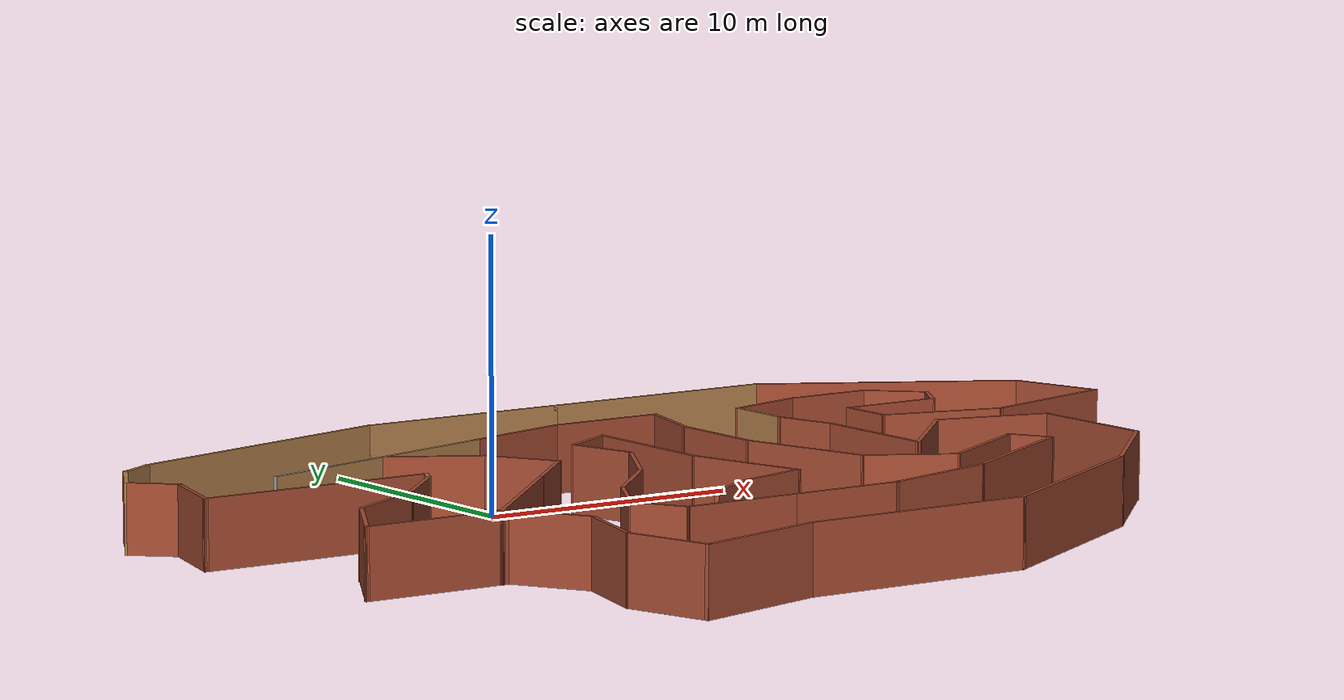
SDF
<?xml version='1.0'?>
<sdf version='1.6'>
  <model name='buildingwoodandbrick'>
    <pose frame=''>5.71008 -6.80437 0 0 -0 0</pose>
    <link name='Wall_0'>
      <collision name='Wall_0_Collision'>
        <geometry>
          <box>
            <size>9 0.15 2.5</size>
          </box>
        </geometry>
        <pose frame=''>0 0 1.25 0 -0 0</pose>
      </collision>
      <visual name='Wall_0_Visual'>
        <pose frame=''>0 0 1.25 0 -0 0</pose>
        <geometry>
          <box>
            <size>9 0.15 2.5</size>
          </box>
        </geometry>
        <material>
          <script>
            <uri>file://media/materials/scripts/gazebo.material</uri>
            <name>Gazebo/Bricks</name>
          </script>
          <ambient>1 1 1 1</ambient>
        </material>
        <meta>
          <layer>0</layer>
        </meta>
      </visual>
      <pose frame=''>-15.1551 3.41437 0 0 -0 3.14159</pose>
    </link>
    <link name='Wall_1'>
      <collision name='Wall_1_Collision'>
        <geometry>
          <box>
            <size>3.25 0.15 2.5</size>
          </box>
        </geometry>
        <pose frame=''>0 0 1.25 0 -0 0</pose>
      </collision>
      <visual name='Wall_1_Visual'>
        <pose frame=''>0 0 1.25 0 -0 0</pose>
        <geometry>
          <box>
            <size>3.25 0.15 2.5</size>
          </box>
        </geometry>
        <material>
          <script>
            <uri>file://media/materials/scripts/gazebo.material</uri>
            <name>Gazebo/Bricks</name>
          </script>
          <ambient>1 1 1 1</ambient>
        </material>
        <meta>
          <layer>0</layer>
        </meta>
      </visual>
      <pose frame=''>-19.1789 4.91155 0 0 -0 1.309</pose>
    </link>
    <link name='Wall_10'>
      <collision name='Wall_10_Collision'>
        <geometry>
          <box>
            <size>6 0.15 2.5</size>
          </box>
        </geometry>
        <pose frame=''>0 0 1.25 0 -0 0</pose>
      </collision>
      <visual name='Wall_10_Visual'>
        <pose frame=''>0 0 1.25 0 -0 0</pose>
        <geometry>
          <box>
            <size>6 0.15 2.5</size>
          </box>
        </geometry>
        <material>
          <script>
            <uri>file://media/materials/scripts/gazebo.material</uri>
            <name>Gazebo/Bricks</name>
          </script>
          <ambient>1 1 1 1</ambient>
        </material>
        <meta>
          <layer>0</layer>
        </meta>
      </visual>
      <pose frame=''>17.2748 4.33026 0 0 0 -2.87979</pose>
    </link>
    <link name='Wall_11'>
      <collision name='Wall_11_Collision'>
        <geometry>
          <box>
            <size>4.75 0.15 2.5</size>
          </box>
        </geometry>
        <pose frame=''>0 0 1.25 0 -0 0</pose>
      </collision>
      <visual name='Wall_11_Visual'>
        <pose frame=''>0 0 1.25 0 -0 0</pose>
        <geometry>
          <box>
            <size>4.75 0.15 2.5</size>
          </box>
        </geometry>
        <material>
          <script>
            <uri>file://media/materials/scripts/gazebo.material</uri>
            <name>Gazebo/Bricks</name>
          </script>
          <ambient>1 1 1 1</ambient>
        </material>
        <meta>
          <layer>0</layer>
        </meta>
      </visual>
      <pose frame=''>12.2278 4.1685 0 0 -0 2.87979</pose>
    </link>
    <link name='Wall_12'>
      <collision name='Wall_12_Collision'>
        <geometry>
          <box>
            <size>2.25 0.15 2.5</size>
          </box>
        </geometry>
        <pose frame=''>0 0 1.25 0 -0 0</pose>
      </collision>
      <visual name='Wall_12_Visual'>
        <pose frame=''>0 0 1.25 0 -0 0</pose>
        <geometry>
          <box>
            <size>2.25 0.15 2.5</size>
          </box>
        </geometry>
        <material>
          <script>
            <uri>file://media/materials/scripts/gazebo.material</uri>
            <name>Gazebo/Bricks</name>
          </script>
          <ambient>1 1 1 1</ambient>
        </material>
        <meta>
          <layer>0</layer>
        </meta>
      </visual>
      <pose frame=''>10.0062 5.81378 0 0 -0 1.5708</pose>
    </link>
    <link name='Wall_13'>
      <collision name='Wall_13_Collision'>
        <geometry>
          <box>
            <size>4 0.15 2.5</size>
          </box>
        </geometry>
        <pose frame=''>0 0 1.25 0 -0 0</pose>
      </collision>
      <visual name='Wall_13_Visual'>
        <pose frame=''>0 0 1.25 0 -0 0</pose>
        <geometry>
          <box>
            <size>4 0.15 2.5</size>
          </box>
        </geometry>
        <material>
          <script>
            <uri>file://media/materials/scripts/gazebo.material</uri>
            <name>Gazebo/Bricks</name>
          </script>
          <ambient>1 1 1 1</ambient>
        </material>
        <meta>
          <layer>0</layer>
        </meta>
      </visual>
      <pose frame=''>11.9312 6.86378 0 0 -0 0</pose>
    </link>
    <link name='Wall_14'>
      <collision name='Wall_14_Collision'>
        <geometry>
          <box>
            <size>1.75 0.15 2.5</size>
          </box>
        </geometry>
        <pose frame=''>0 0 1.25 0 -0 0</pose>
      </collision>
      <visual name='Wall_14_Visual'>
        <pose frame=''>0 0 1.25 0 -0 0</pose>
        <geometry>
          <box>
            <size>1.75 0.15 2.5</size>
          </box>
        </geometry>
        <material>
          <script>
            <uri>file://media/materials/scripts/gazebo.material</uri>
            <name>Gazebo/Bricks</name>
          </script>
          <ambient>1 1 1 1</ambient>
        </material>
        <meta>
          <layer>0</layer>
        </meta>
      </visual>
      <pose frame=''>14.2562 7.5566 0 0 -0 1.0472</pose>
    </link>
    <link name='Wall_15'>
      <collision name='Wall_15_Collision'>
        <geometry>
          <box>
            <size>2.5 0.15 2.5</size>
          </box>
        </geometry>
        <pose frame=''>0 0 1.25 0 -0 0</pose>
      </collision>
      <visual name='Wall_15_Visual'>
        <pose frame=''>0 0 1.25 0 -0 0</pose>
        <geometry>
          <box>
            <size>2.5 0.15 2.5</size>
          </box>
        </geometry>
        <material>
          <script>
            <uri>file://media/materials/scripts/gazebo.material</uri>
            <name>Gazebo/Bricks</name>
          </script>
          <ambient>1 1 1 1</ambient>
        </material>
        <meta>
          <layer>0</layer>
        </meta>
      </visual>
      <pose frame=''>13.8253 9.08028 0 0 -0 2.35619</pose>
    </link>
    <link name='Wall_16'>
      <collision name='Wall_16_Collision'>
        <geometry>
          <box>
            <size>3.5 0.15 2.5</size>
          </box>
        </geometry>
        <pose frame=''>0 0 1.25 0 -0 0</pose>
      </collision>
      <visual name='Wall_16_Visual'>
        <pose frame=''>0 0 1.25 0 -0 0</pose>
        <geometry>
          <box>
            <size>3.5 0.15 2.5</size>
          </box>
        </geometry>
        <material>
          <script>
            <uri>file://media/materials/scripts/gazebo.material</uri>
            <name>Gazebo/Bricks</name>
          </script>
          <ambient>1 1 1 1</ambient>
        </material>
        <meta>
          <layer>0</layer>
        </meta>
      </visual>
      <pose frame=''>11.3195 9.91113 0 0 -0 3.14159</pose>
    </link>
    <link name='Wall_17'>
      <collision name='Wall_17_Collision'>
        <geometry>
          <box>
            <size>3.25 0.15 2.5</size>
          </box>
        </geometry>
        <pose frame=''>0 0 1.25 0 -0 0</pose>
      </collision>
      <visual name='Wall_17_Visual'>
        <pose frame=''>0 0 1.25 0 -0 0</pose>
        <geometry>
          <box>
            <size>3.25 0.15 2.5</size>
          </box>
        </geometry>
        <material>
          <script>
            <uri>file://media/materials/scripts/gazebo.material</uri>
            <name>Gazebo/Bricks</name>
          </script>
          <ambient>1 1 1 1</ambient>
        </material>
        <meta>
          <layer>0</layer>
        </meta>
      </visual>
      <pose frame=''>8.14729 9.50996 0 0 0 -2.87979</pose>
    </link>
    <link name='Wall_18'>
      <collision name='Wall_18_Collision'>
        <geometry>
          <box>
            <size>2.75 0.15 2.5</size>
          </box>
        </geometry>
        <pose frame=''>0 0 1.25 0 -0 0</pose>
      </collision>
      <visual name='Wall_18_Visual'>
        <pose frame=''>0 0 1.25 0 -0 0</pose>
        <geometry>
          <box>
            <size>2.75 0.15 2.5</size>
          </box>
        </geometry>
        <material>
          <script>
            <uri>file://media/materials/scripts/gazebo.material</uri>
            <name>Gazebo/Wood</name>
          </script>
          <ambient>1 1 1 1</ambient>
        </material>
        <meta>
          <layer>0</layer>
        </meta>
      </visual>
      <pose frame=''>6.65011 7.80879 0 0 0 -1.5708</pose>
    </link>
    <link name='Wall_19'>
      <collision name='Wall_19_Collision'>
        <geometry>
          <box>
            <size>2.5 0.15 2.5</size>
          </box>
        </geometry>
        <pose frame=''>0 0 1.25 0 -0 0</pose>
      </collision>
      <visual name='Wall_19_Visual'>
        <pose frame=''>0 0 1.25 0 -0 0</pose>
        <geometry>
          <box>
            <size>2.5 0.15 2.5</size>
          </box>
        </geometry>
        <material>
          <script>
            <uri>file://media/materials/scripts/gazebo.material</uri>
            <name>Gazebo/Bricks</name>
          </script>
          <ambient>1 1 1 1</ambient>
        </material>
        <meta>
          <layer>0</layer>
        </meta>
      </visual>
      <pose frame=''>6.95422 5.37382 0 0 0 -1.309</pose>
    </link>
    <link name='Wall_2'>
      <collision name='Wall_2_Collision'>
        <geometry>
          <box>
            <size>2 0.15 2.5</size>
          </box>
        </geometry>
        <pose frame=''>0 0 1.25 0 -0 0</pose>
      </collision>
      <visual name='Wall_2_Visual'>
        <pose frame=''>0 0 1.25 0 -0 0</pose>
        <geometry>
          <box>
            <size>2 0.15 2.5</size>
          </box>
        </geometry>
        <material>
          <script>
            <uri>file://media/materials/scripts/gazebo.material</uri>
            <name>Gazebo/Bricks</name>
          </script>
          <ambient>1 1 1 1</ambient>
        </material>
        <meta>
          <layer>0</layer>
        </meta>
      </visual>
      <pose frame=''>-19.4318 7.06281 0 0 -0 2.35619</pose>
    </link>
    <link name='Wall_20'>
      <collision name='Wall_20_Collision'>
        <geometry>
          <box>
            <size>5.25 0.15 2.5</size>
          </box>
        </geometry>
        <pose frame=''>0 0 1.25 0 -0 0</pose>
      </collision>
      <visual name='Wall_20_Visual'>
        <pose frame=''>0 0 1.25 0 -0 0</pose>
        <geometry>
          <box>
            <size>5.25 0.15 2.5</size>
          </box>
        </geometry>
        <material>
          <script>
            <uri>file://media/materials/scripts/gazebo.material</uri>
            <name>Gazebo/Bricks</name>
          </script>
          <ambient>1 1 1 1</ambient>
        </material>
        <meta>
          <layer>0</layer>
        </meta>
      </visual>
      <pose frame=''>7.25833 1.68886 0 0 0 -1.5708</pose>
    </link>
    <link name='Wall_21'>
      <collision name='Wall_21_Collision'>
        <geometry>
          <box>
            <size>5.25 0.15 2.5</size>
          </box>
        </geometry>
        <pose frame=''>0 0 1.25 0 -0 0</pose>
      </collision>
      <visual name='Wall_21_Visual'>
        <pose frame=''>0 0 1.25 0 -0 0</pose>
        <geometry>
          <box>
            <size>5.25 0.15 2.5</size>
          </box>
        </geometry>
        <material>
          <script>
            <uri>file://media/materials/scripts/gazebo.material</uri>
            <name>Gazebo/Bricks</name>
          </script>
          <ambient>1 1 1 1</ambient>
        </material>
        <meta>
          <layer>0</layer>
        </meta>
      </visual>
      <pose frame=''>9.06146 0.941983 0 0 -0 0.785398</pose>
    </link>
    <link name='Wall_22'>
      <collision name='Wall_22_Collision'>
        <geometry>
          <box>
            <size>4.5 0.15 2.5</size>
          </box>
        </geometry>
        <pose frame=''>0 0 1.25 0 -0 0</pose>
      </collision>
      <visual name='Wall_22_Visual'>
        <pose frame=''>0 0 1.25 0 -0 0</pose>
        <geometry>
          <box>
            <size>4.5 0.15 2.5</size>
          </box>
        </geometry>
        <material>
          <script>
            <uri>file://media/materials/scripts/gazebo.material</uri>
            <name>Gazebo/Bricks</name>
          </script>
          <ambient>1 1 1 1</ambient>
        </material>
        <meta>
          <layer>0</layer>
        </meta>
      </visual>
      <pose frame=''>12.9655 2.18217 0 0 0 -0.261799</pose>
    </link>
    <link name='Wall_23'>
      <collision name='Wall_23_Collision'>
        <geometry>
          <box>
            <size>5.25 0.15 2.5</size>
          </box>
        </geometry>
        <pose frame=''>0 0 1.25 0 -0 0</pose>
      </collision>
      <visual name='Wall_23_Visual'>
        <pose frame=''>0 0 1.25 0 -0 0</pose>
        <geometry>
          <box>
            <size>5.25 0.15 2.5</size>
          </box>
        </geometry>
        <material>
          <script>
            <uri>file://media/materials/scripts/gazebo.material</uri>
            <name>Gazebo/Bricks</name>
          </script>
          <ambient>1 1 1 1</ambient>
        </material>
        <meta>
          <layer>0</layer>
        </meta>
      </visual>
      <pose frame=''>15.0664 -0.930758 0 0 0 -1.5708</pose>
    </link>
    <link name='Wall_24'>
      <collision name='Wall_24_Collision'>
        <geometry>
          <box>
            <size>5.75 0.15 2.5</size>
          </box>
        </geometry>
        <pose frame=''>0 0 1.25 0 -0 0</pose>
      </collision>
      <visual name='Wall_24_Visual'>
        <pose frame=''>0 0 1.25 0 -0 0</pose>
        <geometry>
          <box>
            <size>5.75 0.15 2.5</size>
          </box>
        </geometry>
        <material>
          <script>
            <uri>file://media/materials/scripts/gazebo.material</uri>
            <name>Gazebo/Bricks</name>
          </script>
          <ambient>1 1 1 1</ambient>
        </material>
        <meta>
          <layer>0</layer>
        </meta>
      </visual>
      <pose frame=''>13.0865 -5.46066 0 0 0 -2.35619</pose>
    </link>
    <link name='Wall_25'>
      <collision name='Wall_25_Collision'>
        <geometry>
          <box>
            <size>9.5 0.15 2.5</size>
          </box>
        </geometry>
        <pose frame=''>0 0 1.25 0 -0 0</pose>
      </collision>
      <visual name='Wall_25_Visual'>
        <pose frame=''>0 0 1.25 0 -0 0</pose>
        <geometry>
          <box>
            <size>9.5 0.15 2.5</size>
          </box>
        </geometry>
        <material>
          <script>
            <uri>file://media/materials/scripts/gazebo.material</uri>
            <name>Gazebo/Bricks</name>
          </script>
          <ambient>1 1 1 1</ambient>
        </material>
        <meta>
          <layer>0</layer>
        </meta>
      </visual>
      <pose frame=''>7.05789 -9.77806 0 0 0 -2.61799</pose>
    </link>
    <link name='Wall_26'>
      <collision name='Wall_26_Collision'>
        <geometry>
          <box>
            <size>9 0.15 2.5</size>
          </box>
        </geometry>
        <pose frame=''>0 0 1.25 0 -0 0</pose>
      </collision>
      <visual name='Wall_26_Visual'>
        <pose frame=''>0 0 1.25 0 -0 0</pose>
        <geometry>
          <box>
            <size>9 0.15 2.5</size>
          </box>
        </geometry>
        <material>
          <script>
            <uri>file://media/materials/scripts/gazebo.material</uri>
            <name>Gazebo/Bricks</name>
          </script>
          <ambient>1 1 1 1</ambient>
        </material>
        <meta>
          <layer>0</layer>
        </meta>
      </visual>
      <pose frame=''>-1.41578 -12.1156 0 0 -0 3.14159</pose>
    </link>
    <link name='Wall_27'>
      <collision name='Wall_27_Collision'>
        <geometry>
          <box>
            <size>5.5 0.15 2.5</size>
          </box>
        </geometry>
        <pose frame=''>0 0 1.25 0 -0 0</pose>
      </collision>
      <visual name='Wall_27_Visual'>
        <pose frame=''>0 0 1.25 0 -0 0</pose>
        <geometry>
          <box>
            <size>5.5 0.15 2.5</size>
          </box>
        </geometry>
        <material>
          <script>
            <uri>file://media/materials/scripts/gazebo.material</uri>
            <name>Gazebo/Bricks</name>
          </script>
          <ambient>1 1 1 1</ambient>
        </material>
        <meta>
          <layer>0</layer>
        </meta>
      </visual>
      <pose frame=''>-8.42463 -12.8079 0 0 0 -2.87979</pose>
    </link>
    <link name='Wall_28'>
      <collision name='Wall_28_Collision'>
        <geometry>
          <box>
            <size>3.5 0.15 2.5</size>
          </box>
        </geometry>
        <pose frame=''>0 0 1.25 0 -0 0</pose>
      </collision>
      <visual name='Wall_28_Visual'>
        <pose frame=''>0 0 1.25 0 -0 0</pose>
        <geometry>
          <box>
            <size>3.5 0.15 2.5</size>
          </box>
        </geometry>
        <material>
          <script>
            <uri>file://media/materials/scripts/gazebo.material</uri>
            <name>Gazebo/Bricks</name>
          </script>
          <ambient>1 1 1 1</ambient>
        </material>
        <meta>
          <layer>0</layer>
        </meta>
      </visual>
      <pose frame=''>-11.442 -11.8823 0 0 -0 1.8326</pose>
    </link>
    <link name='Wall_29'>
      <collision name='Wall_29_Collision'>
        <geometry>
          <box>
            <size>3.5 0.15 2.5</size>
          </box>
        </geometry>
        <pose frame=''>0 0 1.25 0 -0 0</pose>
      </collision>
      <visual name='Wall_29_Visual'>
        <pose frame=''>0 0 1.25 0 -0 0</pose>
        <geometry>
          <box>
            <size>3.5 0.15 2.5</size>
          </box>
        </geometry>
        <material>
          <script>
            <uri>file://media/materials/scripts/gazebo.material</uri>
            <name>Gazebo/Bricks</name>
          </script>
          <ambient>1 1 1 1</ambient>
        </material>
        <meta>
          <layer>0</layer>
        </meta>
      </visual>
      <pose frame=''>-11.442 -8.64646 0 0 -0 1.309</pose>
    </link>
    <link name='Wall_3'>
      <collision name='Wall_3_Collision'>
        <geometry>
          <box>
            <size>2.5 0.15 2.5</size>
          </box>
        </geometry>
        <pose frame=''>0 0 1.25 0 -0 0</pose>
      </collision>
      <visual name='Wall_3_Visual'>
        <pose frame=''>0 0 1.25 0 -0 0</pose>
        <geometry>
          <box>
            <size>2.5 0.15 2.5</size>
          </box>
        </geometry>
        <material>
          <script>
            <uri>file://media/materials/scripts/gazebo.material</uri>
            <name>Gazebo/Wood</name>
          </script>
          <ambient>1 1 1 1</ambient>
        </material>
        <meta>
          <layer>0</layer>
        </meta>
      </visual>
      <pose frame=''>-19.4984 8.73446 0 0 -0 1.0472</pose>
    </link>
    <link name='Wall_30'>
      <collision name='Wall_30_Collision'>
        <geometry>
          <box>
            <size>3.25 0.15 2.5</size>
          </box>
        </geometry>
        <pose frame=''>0 0 1.25 0 -0 0</pose>
      </collision>
      <visual name='Wall_30_Visual'>
        <pose frame=''>0 0 1.25 0 -0 0</pose>
        <geometry>
          <box>
            <size>3.25 0.15 2.5</size>
          </box>
        </geometry>
        <material>
          <script>
            <uri>file://media/materials/scripts/gazebo.material</uri>
            <name>Gazebo/Bricks</name>
          </script>
          <ambient>1 1 1 1</ambient>
        </material>
        <meta>
          <layer>0</layer>
        </meta>
      </visual>
      <pose frame=''>-11.7835 -5.6862 0 0 -0 2.0944</pose>
    </link>
    <link name='Wall_31'>
      <collision name='Wall_31_Collision'>
        <geometry>
          <box>
            <size>5.75 0.15 2.5</size>
          </box>
        </geometry>
        <pose frame=''>0 0 1.25 0 -0 0</pose>
      </collision>
      <visual name='Wall_31_Visual'>
        <pose frame=''>0 0 1.25 0 -0 0</pose>
        <geometry>
          <box>
            <size>5.75 0.15 2.5</size>
          </box>
        </geometry>
        <material>
          <script>
            <uri>file://media/materials/scripts/gazebo.material</uri>
            <name>Gazebo/Bricks</name>
          </script>
          <ambient>1 1 1 1</ambient>
        </material>
        <meta>
          <layer>0</layer>
        </meta>
      </visual>
      <pose frame=''>-15.3585 -4.34386 0 0 -0 3.14159</pose>
    </link>
    <link name='Wall_32'>
      <collision name='Wall_32_Collision'>
        <geometry>
          <box>
            <size>3.75 0.15 2.5</size>
          </box>
        </geometry>
        <pose frame=''>0 0 1.25 0 -0 0</pose>
      </collision>
      <visual name='Wall_32_Visual'>
        <pose frame=''>0 0 1.25 0 -0 0</pose>
        <geometry>
          <box>
            <size>3.75 0.15 2.5</size>
          </box>
        </geometry>
        <material>
          <script>
            <uri>file://media/materials/scripts/gazebo.material</uri>
            <name>Gazebo/Bricks</name>
          </script>
          <ambient>1 1 1 1</ambient>
        </material>
        <meta>
          <layer>0</layer>
        </meta>
      </visual>
      <pose frame=''>-17.2585 -2.78501 0 0 -0 1.0472</pose>
    </link>
    <link name='Wall_33'>
      <collision name='Wall_33_Collision'>
        <geometry>
          <box>
            <size>3.75 0.15 2.5</size>
          </box>
        </geometry>
        <pose frame=''>0 0 1.25 0 -0 0</pose>
      </collision>
      <visual name='Wall_33_Visual'>
        <pose frame=''>0 0 1.25 0 -0 0</pose>
        <geometry>
          <box>
            <size>3.75 0.15 2.5</size>
          </box>
        </geometry>
        <material>
          <script>
            <uri>file://media/materials/scripts/gazebo.material</uri>
            <name>Gazebo/Bricks</name>
          </script>
          <ambient>1 1 1 1</ambient>
        </material>
        <meta>
          <layer>0</layer>
        </meta>
      </visual>
      <pose frame=''>-14.7996 -0.326164 0 0 -0 0.523599</pose>
    </link>
    <link name='Wall_34'>
      <collision name='Wall_34_Collision'>
        <geometry>
          <box>
            <size>3.25 0.15 2.5</size>
          </box>
        </geometry>
        <pose frame=''>0 0 1.25 0 -0 0</pose>
      </collision>
      <visual name='Wall_34_Visual'>
        <pose frame=''>0 0 1.25 0 -0 0</pose>
        <geometry>
          <box>
            <size>3.25 0.15 2.5</size>
          </box>
        </geometry>
        <material>
          <script>
            <uri>file://media/materials/scripts/gazebo.material</uri>
            <name>Gazebo/Bricks</name>
          </script>
          <ambient>1 1 1 1</ambient>
        </material>
        <meta>
          <layer>0</layer>
        </meta>
      </visual>
      <pose frame=''>-12.1448 1.66985 0 0 -0 0.785398</pose>
    </link>
    <link name='Wall_35'>
      <collision name='Wall_35_Collision'>
        <geometry>
          <box>
            <size>0.87257 0.15 2.5</size>
          </box>
        </geometry>
        <pose frame=''>0 0 1.25 0 -0 0</pose>
      </collision>
      <visual name='Wall_35_Visual'>
        <pose frame=''>0 0 1.25 0 -0 0</pose>
        <geometry>
          <box>
            <size>0.87257 0.15 2.5</size>
          </box>
        </geometry>
        <material>
          <script>
            <uri>file://media/materials/scripts/gazebo.material</uri>
            <name>Gazebo/Wood</name>
          </script>
          <ambient>1 1 1 1</ambient>
        </material>
        <meta>
          <layer>0</layer>
        </meta>
      </visual>
      <pose frame=''>-10.8894 3.09012 0 0 -0 1.11405</pose>
    </link>
    <link name='Wall_37'>
      <collision name='Wall_37_Collision'>
        <geometry>
          <box>
            <size>0.75 0.15 2.5</size>
          </box>
        </geometry>
        <pose frame=''>0 0 1.25 0 -0 0</pose>
      </collision>
      <visual name='Wall_37_Visual'>
        <pose frame=''>0 0 1.25 0 -0 0</pose>
        <geometry>
          <box>
            <size>0.75 0.15 2.5</size>
          </box>
        </geometry>
        <material>
          <script>
            <uri>file://media/materials/scripts/gazebo.material</uri>
            <name>Gazebo/Bricks</name>
          </script>
          <ambient>1 1 1 1</ambient>
        </material>
        <meta>
          <layer>0</layer>
        </meta>
      </visual>
      <pose frame=''>-12.9645 -4.10203 0 0 0 -1.309</pose>
    </link>
    <link name='Wall_38'>
      <collision name='Wall_38_Collision'>
        <geometry>
          <box>
            <size>7.25 0.15 2.5</size>
          </box>
        </geometry>
        <pose frame=''>0 0 1.25 0 -0 0</pose>
      </collision>
      <visual name='Wall_38_Visual'>
        <pose frame=''>0 0 1.25 0 -0 0</pose>
        <geometry>
          <box>
            <size>7.25 0.15 2.5</size>
          </box>
        </geometry>
        <material>
          <script>
            <uri>file://media/materials/scripts/gazebo.material</uri>
            <name>Gazebo/Bricks</name>
          </script>
          <ambient>1 1 1 1</ambient>
        </material>
        <meta>
          <layer>0</layer>
        </meta>
      </visual>
      <pose frame=''>-10.3766 -1.88158 0 0 -0 0.785398</pose>
    </link>
    <link name='Wall_39'>
      <collision name='Wall_39_Collision'>
        <geometry>
          <box>
            <size>3.5 0.15 2.5</size>
          </box>
        </geometry>
        <pose frame=''>0 0 1.25 0 -0 0</pose>
      </collision>
      <visual name='Wall_39_Visual'>
        <pose frame=''>0 0 1.25 0 -0 0</pose>
        <geometry>
          <box>
            <size>3.5 0.15 2.5</size>
          </box>
        </geometry>
        <material>
          <script>
            <uri>file://media/materials/scripts/gazebo.material</uri>
            <name>Gazebo/Bricks</name>
          </script>
          <ambient>1 1 1 1</ambient>
        </material>
        <meta>
          <layer>0</layer>
        </meta>
      </visual>
      <pose frame=''>-6.68201 1.81305 0 0 -0 0.785398</pose>
    </link>
    <link name='Wall_4'>
      <collision name='Wall_4_Collision'>
        <geometry>
          <box>
            <size>1.75 0.15 2.5</size>
          </box>
        </geometry>
        <pose frame=''>0 0 1.25 0 -0 0</pose>
      </collision>
      <visual name='Wall_4_Visual'>
        <pose frame=''>0 0 1.25 0 -0 0</pose>
        <geometry>
          <box>
            <size>1.75 0.15 2.5</size>
          </box>
        </geometry>
        <material>
          <script>
            <uri>file://media/materials/scripts/gazebo.material</uri>
            <name>Gazebo/Wood</name>
          </script>
          <ambient>1 1 1 1</ambient>
        </material>
        <meta>
          <layer>0</layer>
        </meta>
      </visual>
      <pose frame=''>-18.2181 10.152 0 0 -0 0.523599</pose>
    </link>
    <link name='Wall_40'>
      <collision name='Wall_40_Collision'>
        <geometry>
          <box>
            <size>3 0.15 2.5</size>
          </box>
        </geometry>
        <pose frame=''>0 0 1.25 0 -0 0</pose>
      </collision>
      <visual name='Wall_40_Visual'>
        <pose frame=''>0 0 1.25 0 -0 0</pose>
        <geometry>
          <box>
            <size>3 0.15 2.5</size>
          </box>
        </geometry>
        <material>
          <script>
            <uri>file://media/materials/scripts/gazebo.material</uri>
            <name>Gazebo/Bricks</name>
          </script>
          <ambient>1 1 1 1</ambient>
        </material>
        <meta>
          <layer>0</layer>
        </meta>
      </visual>
      <pose frame=''>-6.21011 4.23154 0 0 -0 2.0944</pose>
    </link>
    <link name='Wall_41'>
      <collision name='Wall_41_Collision'>
        <geometry>
          <box>
            <size>3.75 0.15 2.5</size>
          </box>
        </geometry>
        <pose frame=''>0 0 1.25 0 -0 0</pose>
      </collision>
      <visual name='Wall_41_Visual'>
        <pose frame=''>0 0 1.25 0 -0 0</pose>
        <geometry>
          <box>
            <size>3.75 0.15 2.5</size>
          </box>
        </geometry>
        <material>
          <script>
            <uri>file://media/materials/scripts/gazebo.material</uri>
            <name>Gazebo/Bricks</name>
          </script>
          <ambient>1 1 1 1</ambient>
        </material>
        <meta>
          <layer>0</layer>
        </meta>
      </visual>
      <pose frame=''>-8.48146 6.36563 0 0 -0 2.61799</pose>
    </link>
    <link name='Wall_42'>
      <collision name='Wall_42_Collision'>
        <geometry>
          <box>
            <size>5.5 0.15 2.5</size>
          </box>
        </geometry>
        <pose frame=''>0 0 1.25 0 -0 0</pose>
      </collision>
      <visual name='Wall_42_Visual'>
        <pose frame=''>0 0 1.25 0 -0 0</pose>
        <geometry>
          <box>
            <size>5.5 0.15 2.5</size>
          </box>
        </geometry>
        <material>
          <script>
            <uri>file://media/materials/scripts/gazebo.material</uri>
            <name>Gazebo/Grey</name>
          </script>
          <ambient>1 1 1 1</ambient>
        </material>
        <meta>
          <layer>0</layer>
        </meta>
      </visual>
      <pose frame=''>-12.6242 6.57329 0 0 0 -2.87979</pose>
    </link>
    <link name='Wall_43'>
      <collision name='Wall_43_Collision'>
        <geometry>
          <box>
            <size>10.5 0.15 2.5</size>
          </box>
        </geometry>
        <pose frame=''>0 0 1.25 0 -0 0</pose>
      </collision>
      <visual name='Wall_43_Visual'>
        <pose frame=''>0 0 1.25 0 -0 0</pose>
        <geometry>
          <box>
            <size>10.5 0.15 2.5</size>
          </box>
        </geometry>
        <material>
          <script>
            <uri>file://media/materials/scripts/gazebo.material</uri>
            <name>Gazebo/Wood</name>
          </script>
          <ambient>1 1 1 1</ambient>
        </material>
        <meta>
          <layer>0</layer>
        </meta>
      </visual>
      <pose frame=''>-10.2093 7.22033 0 0 -0 0.261799</pose>
    </link>
    <link name='Wall_44'>
      <collision name='Wall_44_Collision'>
        <geometry>
          <box>
            <size>4.5 0.15 2.5</size>
          </box>
        </geometry>
        <pose frame=''>0 0 1.25 0 -0 0</pose>
      </collision>
      <visual name='Wall_44_Visual'>
        <pose frame=''>0 0 1.25 0 -0 0</pose>
        <geometry>
          <box>
            <size>4.5 0.15 2.5</size>
          </box>
        </geometry>
        <material>
          <script>
            <uri>file://media/materials/scripts/gazebo.material</uri>
            <name>Gazebo/Bricks</name>
          </script>
          <ambient>1 1 1 1</ambient>
        </material>
        <meta>
          <layer>0</layer>
        </meta>
      </visual>
      <pose frame=''>-3.10978 9.12265 0 0 -0 0.261799</pose>
    </link>
    <link name='Wall_45'>
      <collision name='Wall_45_Collision'>
        <geometry>
          <box>
            <size>4.5 0.15 2.5</size>
          </box>
        </geometry>
        <pose frame=''>0 0 1.25 0 -0 0</pose>
      </collision>
      <visual name='Wall_45_Visual'>
        <pose frame=''>0 0 1.25 0 -0 0</pose>
        <geometry>
          <box>
            <size>4.5 0.15 2.5</size>
          </box>
        </geometry>
        <material>
          <script>
            <uri>file://media/materials/scripts/gazebo.material</uri>
            <name>Gazebo/Bricks</name>
          </script>
          <ambient>1 1 1 1</ambient>
        </material>
        <meta>
          <layer>0</layer>
        </meta>
      </visual>
      <pose frame=''>1.16611 9.68558 0 0 -0 0</pose>
    </link>
    <link name='Wall_46'>
      <collision name='Wall_46_Collision'>
        <geometry>
          <box>
            <size>3.25 0.15 2.5</size>
          </box>
        </geometry>
        <pose frame=''>0 0 1.25 0 -0 0</pose>
      </collision>
      <visual name='Wall_46_Visual'>
        <pose frame=''>0 0 1.25 0 -0 0</pose>
        <geometry>
          <box>
            <size>3.25 0.15 2.5</size>
          </box>
        </geometry>
        <material>
          <script>
            <uri>file://media/materials/scripts/gazebo.material</uri>
            <name>Gazebo/Bricks</name>
          </script>
          <ambient>1 1 1 1</ambient>
        </material>
        <meta>
          <layer>0</layer>
        </meta>
      </visual>
      <pose frame=''>2.93994 8.1884 0 0 0 -1.8326</pose>
    </link>
    <link name='Wall_47'>
      <collision name='Wall_47_Collision'>
        <geometry>
          <box>
            <size>4 0.15 2.5</size>
          </box>
        </geometry>
        <pose frame=''>0 0 1.25 0 -0 0</pose>
      </collision>
      <visual name='Wall_47_Visual'>
        <pose frame=''>0 0 1.25 0 -0 0</pose>
        <geometry>
          <box>
            <size>4 0.15 2.5</size>
          </box>
        </geometry>
        <material>
          <script>
            <uri>file://media/materials/scripts/gazebo.material</uri>
            <name>Gazebo/Bricks</name>
          </script>
          <ambient>1 1 1 1</ambient>
        </material>
        <meta>
          <layer>0</layer>
        </meta>
      </visual>
      <pose frame=''>2.53877 4.76621 0 0 0 -1.5708</pose>
    </link>
    <link name='Wall_48'>
      <collision name='Wall_48_Collision'>
        <geometry>
          <box>
            <size>5.25 0.15 2.5</size>
          </box>
        </geometry>
        <pose frame=''>0 0 1.25 0 -0 0</pose>
      </collision>
      <visual name='Wall_48_Visual'>
        <pose frame=''>0 0 1.25 0 -0 0</pose>
        <geometry>
          <box>
            <size>5.25 0.15 2.5</size>
          </box>
        </geometry>
        <material>
          <script>
            <uri>file://media/materials/scripts/gazebo.material</uri>
            <name>Gazebo/Bricks</name>
          </script>
          <ambient>1 1 1 1</ambient>
        </material>
        <meta>
          <layer>0</layer>
        </meta>
      </visual>
      <pose frame=''>3.19875 0.378103 0 0 0 -1.309</pose>
    </link>
    <link name='Wall_49'>
      <collision name='Wall_49_Collision'>
        <geometry>
          <box>
            <size>3.5 0.15 2.5</size>
          </box>
        </geometry>
        <pose frame=''>0 0 1.25 0 -0 0</pose>
      </collision>
      <visual name='Wall_49_Visual'>
        <pose frame=''>0 0 1.25 0 -0 0</pose>
        <geometry>
          <box>
            <size>3.5 0.15 2.5</size>
          </box>
        </geometry>
        <material>
          <script>
            <uri>file://media/materials/scripts/gazebo.material</uri>
            <name>Gazebo/Bricks</name>
          </script>
          <ambient>1 1 1 1</ambient>
        </material>
        <meta>
          <layer>0</layer>
        </meta>
      </visual>
      <pose frame=''>5.30934 -2.92251 0 0 0 -0.523599</pose>
    </link>
    <link name='Wall_5'>
      <collision name='Wall_5_Collision'>
        <geometry>
          <box>
            <size>11.5 0.15 2.5</size>
          </box>
        </geometry>
        <pose frame=''>0 0 1.25 0 -0 0</pose>
      </collision>
      <visual name='Wall_5_Visual'>
        <pose frame=''>0 0 1.25 0 -0 0</pose>
        <geometry>
          <box>
            <size>11.5 0.15 2.5</size>
          </box>
        </geometry>
        <material>
          <script>
            <uri>file://media/materials/scripts/gazebo.material</uri>
            <name>Gazebo/Wood</name>
          </script>
          <ambient>1 1 1 1</ambient>
        </material>
        <meta>
          <layer>0</layer>
        </meta>
      </visual>
      <pose frame=''>-12.0436 12.0208 0 0 -0 0.261799</pose>
    </link>
    <link name='Wall_50'>
      <collision name='Wall_50_Collision'>
        <geometry>
          <box>
            <size>5 0.15 2.5</size>
          </box>
        </geometry>
        <pose frame=''>0 0 1.25 0 -0 0</pose>
      </collision>
      <visual name='Wall_50_Visual'>
        <pose frame=''>0 0 1.25 0 -0 0</pose>
        <geometry>
          <box>
            <size>5 0.15 2.5</size>
          </box>
        </geometry>
        <material>
          <script>
            <uri>file://media/materials/scripts/gazebo.material</uri>
            <name>Gazebo/Bricks</name>
          </script>
          <ambient>1 1 1 1</ambient>
        </material>
        <meta>
          <layer>0</layer>
        </meta>
      </visual>
      <pose frame=''>8.86004 -2.54751 0 0 -0 0.523599</pose>
    </link>
    <link name='Wall_51'>
      <collision name='Wall_51_Collision'>
        <geometry>
          <box>
            <size>1.75 0.15 2.5</size>
          </box>
        </geometry>
        <pose frame=''>0 0 1.25 0 -0 0</pose>
      </collision>
      <visual name='Wall_51_Visual'>
        <pose frame=''>0 0 1.25 0 -0 0</pose>
        <geometry>
          <box>
            <size>1.75 0.15 2.5</size>
          </box>
        </geometry>
        <material>
          <script>
            <uri>file://media/materials/scripts/gazebo.material</uri>
            <name>Gazebo/Bricks</name>
          </script>
          <ambient>1 1 1 1</ambient>
        </material>
        <meta>
          <layer>0</layer>
        </meta>
      </visual>
      <pose frame=''>11.3602 -2.02783 0 0 0 -1.0472</pose>
    </link>
    <link name='Wall_52'>
      <collision name='Wall_52_Collision'>
        <geometry>
          <box>
            <size>6.75 0.15 2.5</size>
          </box>
        </geometry>
        <pose frame=''>0 0 1.25 0 -0 0</pose>
      </collision>
      <visual name='Wall_52_Visual'>
        <pose frame=''>0 0 1.25 0 -0 0</pose>
        <geometry>
          <box>
            <size>6.75 0.15 2.5</size>
          </box>
        </geometry>
        <material>
          <script>
            <uri>file://media/materials/scripts/gazebo.material</uri>
            <name>Gazebo/Bricks</name>
          </script>
          <ambient>1 1 1 1</ambient>
        </material>
        <meta>
          <layer>0</layer>
        </meta>
      </visual>
      <pose frame=''>8.90227 -4.37065 0 0 0 -2.61799</pose>
    </link>
    <link name='Wall_53'>
      <collision name='Wall_53_Collision'>
        <geometry>
          <box>
            <size>5 0.15 2.5</size>
          </box>
        </geometry>
        <pose frame=''>0 0 1.25 0 -0 0</pose>
      </collision>
      <visual name='Wall_53_Visual'>
        <pose frame=''>0 0 1.25 0 -0 0</pose>
        <geometry>
          <box>
            <size>5 0.15 2.5</size>
          </box>
        </geometry>
        <material>
          <script>
            <uri>file://media/materials/scripts/gazebo.material</uri>
            <name>Gazebo/Bricks</name>
          </script>
          <ambient>1 1 1 1</ambient>
        </material>
        <meta>
          <layer>0</layer>
        </meta>
      </visual>
      <pose frame=''>3.70201 -6.64828 0 0 0 -2.87979</pose>
    </link>
    <link name='Wall_54'>
      <collision name='Wall_54_Collision'>
        <geometry>
          <box>
            <size>4.5 0.15 2.5</size>
          </box>
        </geometry>
        <pose frame=''>0 0 1.25 0 -0 0</pose>
      </collision>
      <visual name='Wall_54_Visual'>
        <pose frame=''>0 0 1.25 0 -0 0</pose>
        <geometry>
          <box>
            <size>4.5 0.15 2.5</size>
          </box>
        </geometry>
        <material>
          <script>
            <uri>file://media/materials/scripts/gazebo.material</uri>
            <name>Gazebo/Bricks</name>
          </script>
          <ambient>1 1 1 1</ambient>
        </material>
        <meta>
          <layer>0</layer>
        </meta>
      </visual>
      <pose frame=''>-0.815356 -7.27592 0 0 -0 3.14159</pose>
    </link>
    <link name='Wall_55'>
      <collision name='Wall_55_Collision'>
        <geometry>
          <box>
            <size>4.5 0.15 2.5</size>
          </box>
        </geometry>
        <pose frame=''>0 0 1.25 0 -0 0</pose>
      </collision>
      <visual name='Wall_55_Visual'>
        <pose frame=''>0 0 1.25 0 -0 0</pose>
        <geometry>
          <box>
            <size>4.5 0.15 2.5</size>
          </box>
        </geometry>
        <material>
          <script>
            <uri>file://media/materials/scripts/gazebo.material</uri>
            <name>Gazebo/Bricks</name>
          </script>
          <ambient>1 1 1 1</ambient>
        </material>
        <meta>
          <layer>0</layer>
        </meta>
      </visual>
      <pose frame=''>-5.16536 -7.27592 0 0 -0 3.14159</pose>
    </link>
    <link name='Wall_56'>
      <collision name='Wall_56_Collision'>
        <geometry>
          <box>
            <size>2.25 0.15 2.5</size>
          </box>
        </geometry>
        <pose frame=''>0 0 1.25 0 -0 0</pose>
      </collision>
      <visual name='Wall_56_Visual'>
        <pose frame=''>0 0 1.25 0 -0 0</pose>
        <geometry>
          <box>
            <size>2.25 0.15 2.5</size>
          </box>
        </geometry>
        <material>
          <script>
            <uri>file://media/materials/scripts/gazebo.material</uri>
            <name>Gazebo/Bricks</name>
          </script>
          <ambient>1 1 1 1</ambient>
        </material>
        <meta>
          <layer>0</layer>
        </meta>
      </visual>
      <pose frame=''>-7.86536 -6.3666 0 0 -0 2.0944</pose>
    </link>
    <link name='Wall_57'>
      <collision name='Wall_57_Collision'>
        <geometry>
          <box>
            <size>3.25 0.15 2.5</size>
          </box>
        </geometry>
        <pose frame=''>0 0 1.25 0 -0 0</pose>
      </collision>
      <visual name='Wall_57_Visual'>
        <pose frame=''>0 0 1.25 0 -0 0</pose>
        <geometry>
          <box>
            <size>3.25 0.15 2.5</size>
          </box>
        </geometry>
        <material>
          <script>
            <uri>file://media/materials/scripts/gazebo.material</uri>
            <name>Gazebo/Bricks</name>
          </script>
          <ambient>1 1 1 1</ambient>
        </material>
        <meta>
          <layer>0</layer>
        </meta>
      </visual>
      <pose frame=''>-7.61536 -4.11493 0 0 -0 1.0472</pose>
    </link>
    <link name='Wall_58'>
      <collision name='Wall_58_Collision'>
        <geometry>
          <box>
            <size>3.75 0.15 2.5</size>
          </box>
        </geometry>
        <pose frame=''>0 0 1.25 0 -0 0</pose>
      </collision>
      <visual name='Wall_58_Visual'>
        <pose frame=''>0 0 1.25 0 -0 0</pose>
        <geometry>
          <box>
            <size>3.75 0.15 2.5</size>
          </box>
        </geometry>
        <material>
          <script>
            <uri>file://media/materials/scripts/gazebo.material</uri>
            <name>Gazebo/Bricks</name>
          </script>
          <ambient>1 1 1 1</ambient>
        </material>
        <meta>
          <layer>0</layer>
        </meta>
      </visual>
      <pose frame=''>-5.56756 -1.4998 0 0 -0 0.785398</pose>
    </link>
    <link name='Wall_59'>
      <collision name='Wall_59_Collision'>
        <geometry>
          <box>
            <size>4 0.15 2.5</size>
          </box>
        </geometry>
        <pose frame=''>0 0 1.25 0 -0 0</pose>
      </collision>
      <visual name='Wall_59_Visual'>
        <pose frame=''>0 0 1.25 0 -0 0</pose>
        <geometry>
          <box>
            <size>4 0.15 2.5</size>
          </box>
        </geometry>
        <material>
          <script>
            <uri>file://media/materials/scripts/gazebo.material</uri>
            <name>Gazebo/Bricks</name>
          </script>
          <ambient>1 1 1 1</ambient>
        </material>
        <meta>
          <layer>0</layer>
        </meta>
      </visual>
      <pose frame=''>-3.33227 1.44009 0 0 -0 1.0472</pose>
    </link>
    <link name='Wall_6'>
      <collision name='Wall_6_Collision'>
        <geometry>
          <box>
            <size>8.25 0.15 2.5</size>
          </box>
        </geometry>
        <pose frame=''>0 0 1.25 0 -0 0</pose>
      </collision>
      <visual name='Wall_6_Visual'>
        <pose frame=''>0 0 1.25 0 -0 0</pose>
        <geometry>
          <box>
            <size>8.25 0.15 2.5</size>
          </box>
        </geometry>
        <material>
          <script>
            <uri>file://media/materials/scripts/gazebo.material</uri>
            <name>Gazebo/Wood</name>
          </script>
          <ambient>1 1 1 1</ambient>
        </material>
        <meta>
          <layer>0</layer>
        </meta>
      </visual>
      <pose frame=''>-2.51199 13.4896 0 0 -0 0</pose>
    </link>
    <link name='Wall_60'>
      <collision name='Wall_60_Collision'>
        <geometry>
          <box>
            <size>2.75 0.15 2.5</size>
          </box>
        </geometry>
        <pose frame=''>0 0 1.25 0 -0 0</pose>
      </collision>
      <visual name='Wall_60_Visual'>
        <pose frame=''>0 0 1.25 0 -0 0</pose>
        <geometry>
          <box>
            <size>2.75 0.15 2.5</size>
          </box>
        </geometry>
        <material>
          <script>
            <uri>file://media/materials/scripts/gazebo.material</uri>
            <name>Gazebo/Bricks</name>
          </script>
          <ambient>1 1 1 1</ambient>
        </material>
        <meta>
          <layer>0</layer>
        </meta>
      </visual>
      <pose frame=''>-2.70624 4.3629 0 0 -0 1.8326</pose>
    </link>
    <link name='Wall_61'>
      <collision name='Wall_61_Collision'>
        <geometry>
          <box>
            <size>2.5 0.15 2.5</size>
          </box>
        </geometry>
        <pose frame=''>0 0 1.25 0 -0 0</pose>
      </collision>
      <visual name='Wall_61_Visual'>
        <pose frame=''>0 0 1.25 0 -0 0</pose>
        <geometry>
          <box>
            <size>2.5 0.15 2.5</size>
          </box>
        </geometry>
        <material>
          <script>
            <uri>file://media/materials/scripts/gazebo.material</uri>
            <name>Gazebo/Bricks</name>
          </script>
          <ambient>1 1 1 1</ambient>
        </material>
        <meta>
          <layer>0</layer>
        </meta>
      </visual>
      <pose frame=''>-2.02512 6.2061 0 0 -0 0.523599</pose>
    </link>
    <link name='Wall_62'>
      <collision name='Wall_62_Collision'>
        <geometry>
          <box>
            <size>5.75 0.15 2.5</size>
          </box>
        </geometry>
        <pose frame=''>0 0 1.25 0 -0 0</pose>
      </collision>
      <visual name='Wall_62_Visual'>
        <pose frame=''>0 0 1.25 0 -0 0</pose>
        <geometry>
          <box>
            <size>5.75 0.15 2.5</size>
          </box>
        </geometry>
        <material>
          <script>
            <uri>file://media/materials/scripts/gazebo.material</uri>
            <name>Gazebo/Bricks</name>
          </script>
          <ambient>1 1 1 1</ambient>
        </material>
        <meta>
          <layer>0</layer>
        </meta>
      </visual>
      <pose frame=''>-1.00754 3.9936 0 0 0 -1.5708</pose>
    </link>
    <link name='Wall_63'>
      <collision name='Wall_63_Collision'>
        <geometry>
          <box>
            <size>4.75 0.15 2.5</size>
          </box>
        </geometry>
        <pose frame=''>0 0 1.25 0 -0 0</pose>
      </collision>
      <visual name='Wall_63_Visual'>
        <pose frame=''>0 0 1.25 0 -0 0</pose>
        <geometry>
          <box>
            <size>4.75 0.15 2.5</size>
          </box>
        </geometry>
        <material>
          <script>
            <uri>file://media/materials/scripts/gazebo.material</uri>
            <name>Gazebo/Bricks</name>
          </script>
          <ambient>1 1 1 1</ambient>
        </material>
        <meta>
          <layer>0</layer>
        </meta>
      </visual>
      <pose frame=''>-0.412258 -1.02803 0 0 0 -1.309</pose>
    </link>
    <link name='Wall_64'>
      <collision name='Wall_64_Collision'>
        <geometry>
          <box>
            <size>3 0.15 2.5</size>
          </box>
        </geometry>
        <pose frame=''>0 0 1.25 0 -0 0</pose>
      </collision>
      <visual name='Wall_64_Visual'>
        <pose frame=''>0 0 1.25 0 -0 0</pose>
        <geometry>
          <box>
            <size>3 0.15 2.5</size>
          </box>
        </geometry>
        <material>
          <script>
            <uri>file://media/materials/scripts/gazebo.material</uri>
            <name>Gazebo/Bricks</name>
          </script>
          <ambient>1 1 1 1</ambient>
        </material>
        <meta>
          <layer>0</layer>
        </meta>
      </visual>
      <pose frame=''>-1.19342 -3.61848 0 0 0 -2.87979</pose>
    </link>
    <link name='Wall_65'>
      <collision name='Wall_65_Collision'>
        <geometry>
          <box>
            <size>2.5 0.15 2.5</size>
          </box>
        </geometry>
        <pose frame=''>0 0 1.25 0 -0 0</pose>
      </collision>
      <visual name='Wall_65_Visual'>
        <pose frame=''>0 0 1.25 0 -0 0</pose>
        <geometry>
          <box>
            <size>2.5 0.15 2.5</size>
          </box>
        </geometry>
        <material>
          <script>
            <uri>file://media/materials/scripts/gazebo.material</uri>
            <name>Gazebo/Bricks</name>
          </script>
          <ambient>1 1 1 1</ambient>
        </material>
        <meta>
          <layer>0</layer>
        </meta>
      </visual>
      <pose frame=''>-3.58744 -4.57479 0 0 0 -2.61799</pose>
    </link>
    <link name='Wall_7'>
      <collision name='Wall_7_Collision'>
        <geometry>
          <box>
            <size>9.25 0.15 2.5</size>
          </box>
        </geometry>
        <pose frame=''>0 0 1.25 0 -0 0</pose>
      </collision>
      <visual name='Wall_7_Visual'>
        <pose frame=''>0 0 1.25 0 -0 0</pose>
        <geometry>
          <box>
            <size>9.25 0.15 2.5</size>
          </box>
        </geometry>
        <material>
          <script>
            <uri>file://media/materials/scripts/gazebo.material</uri>
            <name>Gazebo/Wood</name>
          </script>
          <ambient>1 1 1 1</ambient>
        </material>
        <meta>
          <layer>0</layer>
        </meta>
      </visual>
      <pose frame=''>6.08801 13.4896 0 0 -0 0</pose>
    </link>
    <link name='Wall_8'>
      <collision name='Wall_8_Collision'>
        <geometry>
          <box>
            <size>10 0.15 2.5</size>
          </box>
        </geometry>
        <pose frame=''>0 0 1.25 0 -0 0</pose>
      </collision>
      <visual name='Wall_8_Visual'>
        <pose frame=''>0 0 1.25 0 -0 0</pose>
        <geometry>
          <box>
            <size>10 0.15 2.5</size>
          </box>
        </geometry>
        <material>
          <script>
            <uri>file://media/materials/scripts/gazebo.material</uri>
            <name>Gazebo/Bricks</name>
          </script>
          <ambient>1 1 1 1</ambient>
        </material>
        <meta>
          <layer>0</layer>
        </meta>
      </visual>
      <pose frame=''>14.9032 11.0271 0 0 0 -0.523599</pose>
    </link>
    <link name='Wall_9'>
      <collision name='Wall_9_Collision'>
        <geometry>
          <box>
            <size>3.75 0.15 2.5</size>
          </box>
        </geometry>
        <pose frame=''>0 0 1.25 0 -0 0</pose>
      </collision>
      <visual name='Wall_9_Visual'>
        <pose frame=''>0 0 1.25 0 -0 0</pose>
        <geometry>
          <box>
            <size>3.75 0.15 2.5</size>
          </box>
        </geometry>
        <material>
          <script>
            <uri>file://media/materials/scripts/gazebo.material</uri>
            <name>Gazebo/Bricks</name>
          </script>
          <ambient>1 1 1 1</ambient>
        </material>
        <meta>
          <layer>0</layer>
        </meta>
      </visual>
      <pose frame=''>19.6342 6.82597 0 0 0 -1.309</pose>
    </link>
    <static>1</static>
  </model>
</sdf>
